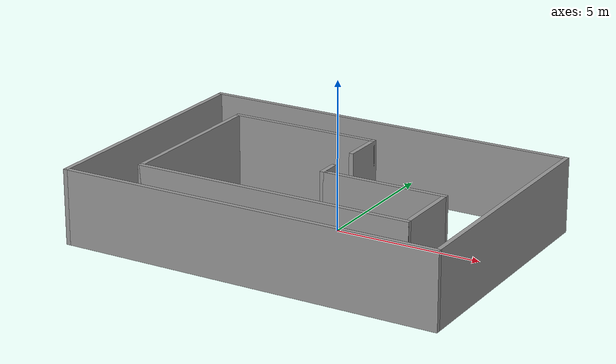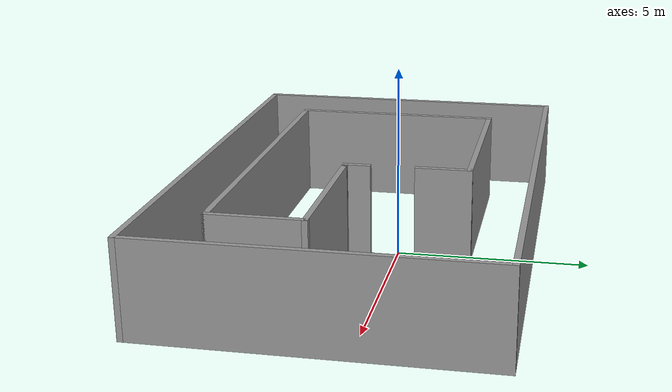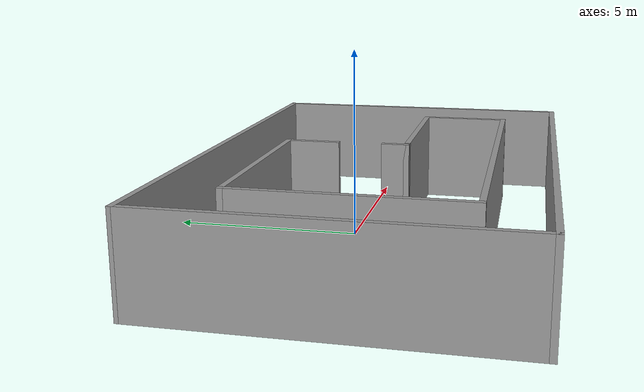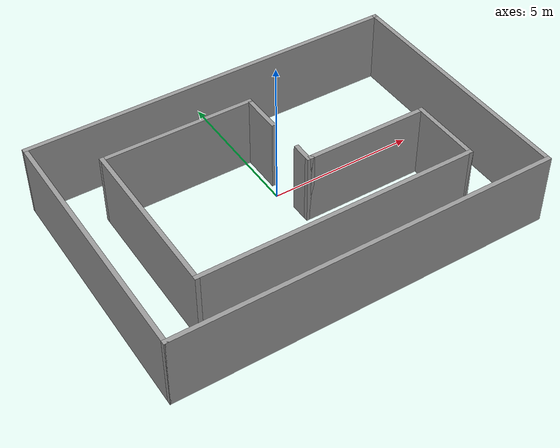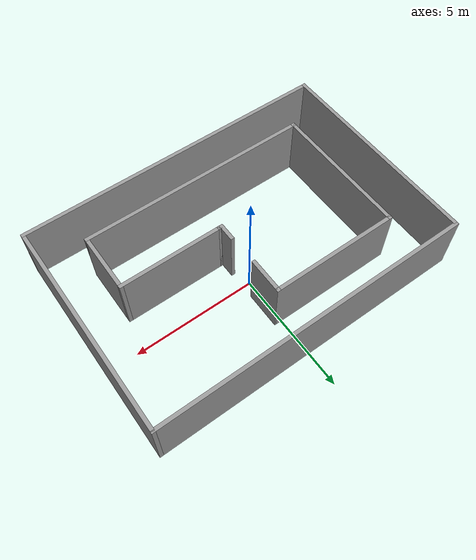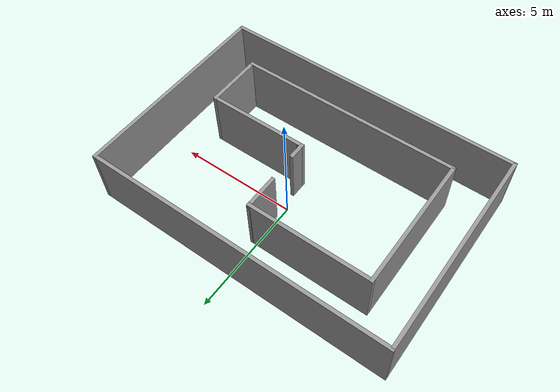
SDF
<?xml version='1.0'?>
<sdf version='1.6'>
  <model name='Untitled'>
    <pose frame=''>-0.212484 -0.849652 0 0 -0 0</pose>
    <link name='Wall_101'>
      <collision name='Wall_101_Collision'>
        <geometry>
          <box>
            <size>13 0.15 2.5</size>
          </box>
        </geometry>
        <pose frame=''>0 0 1.25 0 -0 0</pose>
      </collision>
      <visual name='Wall_101_Visual'>
        <pose frame=''>0 0 1.25 0 -0 0</pose>
        <geometry>
          <box>
            <size>13 0.15 2.5</size>
          </box>
        </geometry>
        <material>
          <script>
            <uri>file://media/materials/scripts/gazebo.material</uri>
            <name>Gazebo/Grey</name>
          </script>
          <ambient>1 1 1 1</ambient>
        </material>
      </visual>
      <pose frame=''>0 -4.35 0 0 -0 0</pose>
    </link>
    <link name='Wall_103'>
      <collision name='Wall_103_Collision'>
        <geometry>
          <box>
            <size>8.75 0.15 2.5</size>
          </box>
        </geometry>
        <pose frame=''>0 0 1.25 0 -0 0</pose>
      </collision>
      <visual name='Wall_103_Visual'>
        <pose frame=''>0 0 1.25 0 -0 0</pose>
        <geometry>
          <box>
            <size>8.75 0.15 2.5</size>
          </box>
        </geometry>
        <material>
          <script>
            <uri>file://media/materials/scripts/gazebo.material</uri>
            <name>Gazebo/Grey</name>
          </script>
          <ambient>1 1 1 1</ambient>
        </material>
      </visual>
      <pose frame=''>-6.425 -0.05 0 0 -0 1.5708</pose>
    </link>
    <link name='Wall_105'>
      <collision name='Wall_105_Collision'>
        <geometry>
          <box>
            <size>13 0.15 2.5</size>
          </box>
        </geometry>
        <pose frame=''>0 0 1.25 0 -0 0</pose>
      </collision>
      <visual name='Wall_105_Visual'>
        <pose frame=''>0 0 1.25 0 -0 0</pose>
        <geometry>
          <box>
            <size>13 0.15 2.5</size>
          </box>
        </geometry>
        <material>
          <script>
            <uri>file://media/materials/scripts/gazebo.material</uri>
            <name>Gazebo/Grey</name>
          </script>
          <ambient>1 1 1 1</ambient>
        </material>
      </visual>
      <pose frame=''>0 4.35 0 0 -0 3.14159</pose>
    </link>
    <link name='Wall_107'>
      <collision name='Wall_107_Collision'>
        <geometry>
          <box>
            <size>8.75 0.15 2.5</size>
          </box>
        </geometry>
        <pose frame=''>0 0 1.25 0 -0 0</pose>
      </collision>
      <visual name='Wall_107_Visual'>
        <pose frame=''>0 0 1.25 0 -0 0</pose>
        <geometry>
          <box>
            <size>8.75 0.15 2.5</size>
          </box>
        </geometry>
        <material>
          <script>
            <uri>file://media/materials/scripts/gazebo.material</uri>
            <name>Gazebo/Grey</name>
          </script>
          <ambient>1 1 1 1</ambient>
        </material>
      </visual>
      <pose frame=''>6.425 0.05 0 0 0 -1.5708</pose>
    </link>
    <link name='Wall_109'>
      <collision name='Wall_109_Collision'>
        <geometry>
          <box>
            <size>5.75 0.15 2.5</size>
          </box>
        </geometry>
        <pose frame=''>0 0 1.25 0 -0 0</pose>
      </collision>
      <visual name='Wall_109_Visual'>
        <pose frame=''>0 0 1.25 0 -0 0</pose>
        <geometry>
          <box>
            <size>5.75 0.15 2.5</size>
          </box>
        </geometry>
        <material>
          <script>
            <uri>file://media/materials/scripts/gazebo.material</uri>
            <name>Gazebo/Grey</name>
          </script>
          <ambient>1 1 1 1</ambient>
        </material>
      </visual>
      <pose frame=''>-4.67572 -0.062823 0 0 0 -1.5708</pose>
    </link>
    <link name='Wall_111'>
      <collision name='Wall_111_Collision'>
        <geometry>
          <box>
            <size>9.5 0.15 2.5</size>
          </box>
        </geometry>
        <pose frame=''>0 0 1.25 0 -0 0</pose>
      </collision>
      <visual name='Wall_111_Visual'>
        <pose frame=''>0 0 1.25 0 -0 0</pose>
        <geometry>
          <box>
            <size>9.5 0.15 2.5</size>
          </box>
        </geometry>
        <material>
          <script>
            <uri>file://media/materials/scripts/gazebo.material</uri>
            <name>Gazebo/Grey</name>
          </script>
          <ambient>1 1 1 1</ambient>
        </material>
      </visual>
      <pose frame=''>-0.000716 -2.86282 0 0 -0 0</pose>
    </link>
    <link name='Wall_113'>
      <collision name='Wall_113_Collision'>
        <geometry>
          <box>
            <size>2.5 0.15 2.5</size>
          </box>
        </geometry>
        <pose frame=''>0 0 1.25 0 -0 0</pose>
      </collision>
      <visual name='Wall_113_Visual'>
        <pose frame=''>0 0 1.25 0 -0 0</pose>
        <geometry>
          <box>
            <size>2.5 0.15 2.5</size>
          </box>
        </geometry>
        <material>
          <script>
            <uri>file://media/materials/scripts/gazebo.material</uri>
            <name>Gazebo/Grey</name>
          </script>
          <ambient>1 1 1 1</ambient>
        </material>
      </visual>
      <pose frame=''>4.67428 -1.68782 0 0 -0 1.5708</pose>
    </link>
    <link name='Wall_124'>
      <collision name='Wall_124_Collision'>
        <geometry>
          <box>
            <size>0.15 0.15 2.5</size>
          </box>
        </geometry>
        <pose frame=''>0 0 1.25 0 -0 0</pose>
      </collision>
      <visual name='Wall_124_Visual'>
        <pose frame=''>0 0 1.25 0 -0 0</pose>
        <geometry>
          <box>
            <size>0.15 0.15 2.5</size>
          </box>
        </geometry>
        <material>
          <script>
            <uri>file://media/materials/scripts/gazebo.material</uri>
            <name>Gazebo/Grey</name>
          </script>
          <ambient>1 1 1 1</ambient>
        </material>
      </visual>
      <pose frame=''>0.574284 -0.512823 0 0 -0 0</pose>
    </link>
    <link name='Wall_136'>
      <collision name='Wall_136_Collision'>
        <geometry>
          <box>
            <size>4.25 0.15 2.5</size>
          </box>
        </geometry>
        <pose frame=''>0 0 1.25 0 -0 0</pose>
      </collision>
      <visual name='Wall_136_Visual'>
        <pose frame=''>0 0 1.25 0 -0 0</pose>
        <geometry>
          <box>
            <size>4.25 0.15 2.5</size>
          </box>
        </geometry>
        <material>
          <script>
            <uri>file://media/materials/scripts/gazebo.material</uri>
            <name>Gazebo/Grey</name>
          </script>
          <ambient>1 1 1 1</ambient>
        </material>
      </visual>
      <pose frame=''>2.62428 -0.512823 0 0 -0 0</pose>
    </link>
    <link name='Wall_138'>
      <collision name='Wall_138_Collision'>
        <geometry>
          <box>
            <size>0.25 0.15 2.5</size>
          </box>
        </geometry>
        <pose frame=''>0 0 1.25 0 -0 0</pose>
      </collision>
      <visual name='Wall_138_Visual'>
        <pose frame=''>0 0 1.25 0 -0 0</pose>
        <geometry>
          <box>
            <size>0.25 0.15 2.5</size>
          </box>
        </geometry>
        <material>
          <script>
            <uri>file://media/materials/scripts/gazebo.material</uri>
            <name>Gazebo/Grey</name>
          </script>
          <ambient>1 1 1 1</ambient>
        </material>
      </visual>
      <pose frame=''>0.524284 -0.512823 0 0 -0 3.14159</pose>
    </link>
    <link name='Wall_145'>
      <collision name='Wall_145_Collision'>
        <geometry>
          <box>
            <size>0.25 0.15 2.5</size>
          </box>
        </geometry>
        <pose frame=''>0 0 1.25 0 -0 0</pose>
      </collision>
      <visual name='Wall_145_Visual'>
        <pose frame=''>0 0 1.25 0 -0 0</pose>
        <geometry>
          <box>
            <size>0.25 0.15 2.5</size>
          </box>
        </geometry>
        <material>
          <script>
            <uri>file://media/materials/scripts/gazebo.material</uri>
            <name>Gazebo/Grey</name>
          </script>
          <ambient>1 1 1 1</ambient>
        </material>
      </visual>
      <pose frame=''>0.524284 -0.512823 0 0 -0 3.14159</pose>
    </link>
    <link name='Wall_146'>
      <collision name='Wall_146_Collision'>
        <geometry>
          <box>
            <size>0.75 0.15 2.5</size>
          </box>
        </geometry>
        <pose frame=''>0 0 1.25 0 -0 0</pose>
      </collision>
      <visual name='Wall_146_Visual'>
        <pose frame=''>0 0 1.25 0 -0 0</pose>
        <geometry>
          <box>
            <size>0.75 0.15 2.5</size>
          </box>
        </geometry>
        <material>
          <script>
            <uri>file://media/materials/scripts/gazebo.material</uri>
            <name>Gazebo/Grey</name>
          </script>
          <ambient>1 1 1 1</ambient>
        </material>
      </visual>
      <pose frame=''>0.474284 -0.212823 0 0 -0 1.5708</pose>
    </link>
    <link name='Wall_148'>
      <collision name='Wall_148_Collision'>
        <geometry>
          <box>
            <size>1.5 0.15 2.5</size>
          </box>
        </geometry>
        <pose frame=''>0 0 1.25 0 -0 0</pose>
      </collision>
      <visual name='Wall_148_Visual'>
        <pose frame=''>0 0 1.25 0 -0 0</pose>
        <geometry>
          <box>
            <size>1.5 0.15 2.5</size>
          </box>
        </geometry>
        <material>
          <script>
            <uri>file://media/materials/scripts/gazebo.material</uri>
            <name>Gazebo/Grey</name>
          </script>
          <ambient>1 1 1 1</ambient>
        </material>
      </visual>
      <pose frame=''>0.424284 2.06218 0 0 0 -1.5708</pose>
    </link>
    <link name='Wall_150'>
      <collision name='Wall_150_Collision'>
        <geometry>
          <box>
            <size>5.25 0.15 2.5</size>
          </box>
        </geometry>
        <pose frame=''>0 0 1.25 0 -0 0</pose>
      </collision>
      <visual name='Wall_150_Visual'>
        <pose frame=''>0 0 1.25 0 -0 0</pose>
        <geometry>
          <box>
            <size>5.25 0.15 2.5</size>
          </box>
        </geometry>
        <material>
          <script>
            <uri>file://media/materials/scripts/gazebo.material</uri>
            <name>Gazebo/Grey</name>
          </script>
          <ambient>1 1 1 1</ambient>
        </material>
      </visual>
      <pose frame=''>-2.12572 2.73718 0 0 -0 0</pose>
    </link>
    <link name='Wall_97'>
      <collision name='Wall_97_Collision'>
        <geometry>
          <box>
            <size>0.15 0.15 2.5</size>
          </box>
        </geometry>
        <pose frame=''>0 0 1.25 0 -0 0</pose>
      </collision>
      <visual name='Wall_97_Visual'>
        <pose frame=''>0 0 1.25 0 -0 0</pose>
        <geometry>
          <box>
            <size>0.15 0.15 2.5</size>
          </box>
        </geometry>
        <material>
          <script>
            <uri>file://media/materials/scripts/gazebo.material</uri>
            <name>Gazebo/Grey</name>
          </script>
          <ambient>1 1 1 1</ambient>
        </material>
      </visual>
      <pose frame=''>0.424284 2.73718 0 0 -0 0</pose>
    </link>
    <link name='Wall_98'>
      <collision name='Wall_98_Collision'>
        <geometry>
          <box>
            <size>0.15 0.15 2.5</size>
          </box>
        </geometry>
        <pose frame=''>0 0 1.25 0 -0 0</pose>
      </collision>
      <visual name='Wall_98_Visual'>
        <pose frame=''>0 0 1.25 0 -0 0</pose>
        <geometry>
          <box>
            <size>0.15 0.15 2.5</size>
          </box>
        </geometry>
        <material>
          <script>
            <uri>file://media/materials/scripts/gazebo.material</uri>
            <name>Gazebo/Grey</name>
          </script>
          <ambient>1 1 1 1</ambient>
        </material>
      </visual>
      <pose frame=''>0.424284 2.73718 0 0 -0 0</pose>
    </link>
    <static>1</static>
  </model>
</sdf>
